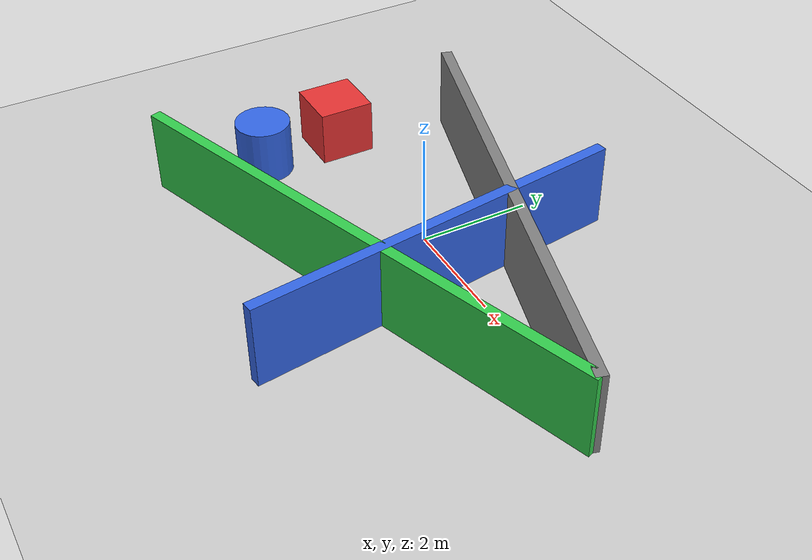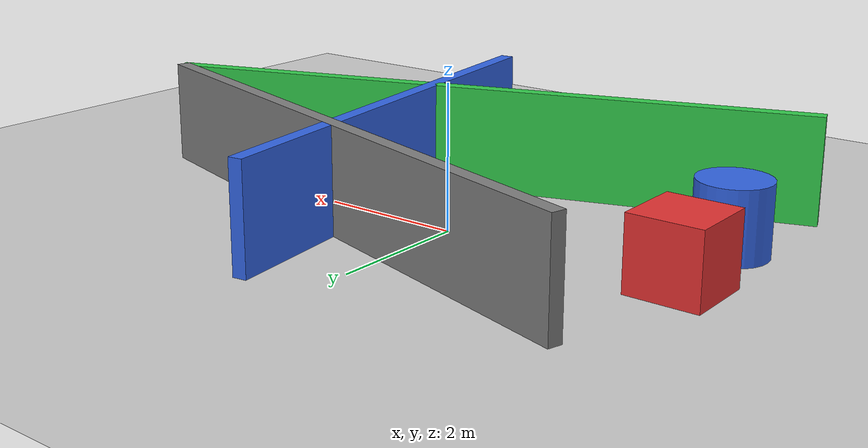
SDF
<?xml version='1.0' encoding='utf-8'?>
<sdf version="1.8">
  <world name="sdfsd">
    <physics name="1ms" type="ode">
      <max_step_size>0.001</max_step_size>
      <real_time_factor>1</real_time_factor>
      <real_time_update_rate>1000</real_time_update_rate>
    </physics>
    <plugin name="ignition::gazebo::systems::Physics" filename="ignition-gazebo-physics-system" />
    <plugin name="ignition::gazebo::systems::UserCommands" filename="ignition-gazebo-user-commands-system" />
    <plugin name="ignition::gazebo::systems::SceneBroadcaster" filename="ignition-gazebo-scene-broadcaster-system" />
    <plugin name="ignition::gazebo::systems::Contact" filename="ignition-gazebo-contact-system" />
    <plugin name="ignition::gazebo::systems::Sensors" filename="ignition-gazebo-sensors-system">
      <render_engine>ogre2</render_engine>
    </plugin>
    <gravity>0 0 -9.8</gravity>
    <magnetic_field>6e-06 2.3e-05 -4.2e-05</magnetic_field>
    <atmosphere type="adiabatic" />
    <scene>
      <ambient>0.4 0.4 0.4 1</ambient>
      <background>0.7 0.7 0.7 1</background>
      <shadows>true</shadows>
    </scene>
    <model name="ground_plane">
      <static>true</static>
      <link name="link">
        <collision name="collision">
          <geometry>
            <plane>
              <normal>0 0 1</normal>
              <size>100 100</size>
            </plane>
          </geometry>
          <surface>
            <friction>
              <ode />
            </friction>
            <bounce />
            <contact />
          </surface>
        </collision>
        <visual name="visual">
          <geometry>
            <plane>
              <normal>0 0 1</normal>
              <size>100 100</size>
            </plane>
          </geometry>
          <material>
            <ambient>0.8 0.8 0.8 1</ambient>
            <diffuse>0.8 0.8 0.8 1</diffuse>
            <specular>0.8 0.8 0.8 1</specular>
          </material>
        </visual>
        <pose>0 0 0 0 0 0</pose>
        <inertial>
          <pose>0 0 0 0 0 0</pose>
          <mass>1</mass>
          <inertia>
            <ixx>1</ixx>
            <ixy>0</ixy>
            <ixz>0</ixz>
            <iyy>1</iyy>
            <iyz>0</iyz>
            <izz>1</izz>
          </inertia>
        </inertial>
        <enable_wind>false</enable_wind>
      </link>
      <pose>0 0 0 0 0 0</pose>
      <self_collide>false</self_collide>
    </model>
    <light name="sun" type="directional">
      <pose>0 0 10 0 0 0</pose>
      <cast_shadows>true</cast_shadows>
      <intensity>1</intensity>
      <direction>-0.5 0.1 -0.9</direction>
      <diffuse>0.8 0.8 0.8 1</diffuse>
      <specular>0.2 0.2 0.2 1</specular>
      <attenuation>
        <range>1000</range>
        <linear>0.01</linear>
        <constant>0.9</constant>
        <quadratic>0.001</quadratic>
      </attenuation>
      <spot>
        <inner_angle>0</inner_angle>
        <outer_angle>0</outer_angle>
        <falloff>0</falloff>
      </spot>
    </light>
  <model name="wall_1"><static>true</static><pose>1.150 0.950 0.750 0 0 -0.286</pose><link name="link"><collision name="collision"><geometry><box><size>8.860 0.200 1.500</size></box></geometry></collision><visual name="visual"><geometry><box><size>8.860 0.200 1.500</size></box></geometry><material><ambient>0.5 0.5 0.5 1</ambient><diffuse>0.5 0.5 0.5 1</diffuse></material></visual></link></model><model name="wall_2"><static>true</static><pose>0.850 -1.800 0.750 0 0 -2.823</pose><link name="link"><collision name="collision"><geometry><box><size>9.582 0.200 1.500</size></box></geometry></collision><visual name="visual"><geometry><box><size>9.582 0.200 1.500</size></box></geometry><material><ambient>0.2 0.8 0.3 1</ambient><diffuse>0.2 0.8 0.3 1</diffuse></material></visual></link></model><model name="wall_3"><static>true</static><pose>1.350 -0.500 0.750 0 0 -1.439</pose><link name="link"><collision name="collision"><geometry><box><size>6.859 0.200 1.500</size></box></geometry></collision><visual name="visual"><geometry><box><size>6.859 0.200 1.500</size></box></geometry><material><ambient>0.2 0.4 0.9 1</ambient><diffuse>0.2 0.4 0.9 1</diffuse></material></visual></link></model><model name="box_4"><static>true</static><pose>-3.400 -0.000 0.500 0 0 0</pose><link name="link"><collision name="collision"><geometry><box><size>1.000 1.000 1.000</size></box></geometry></collision><visual name="visual"><geometry><box><size>1.000 1.000 1.000</size></box></geometry><material><ambient>0.9 0.2 0.2 1</ambient><diffuse>0.9 0.2 0.2 1</diffuse></material></visual></link></model><model name="cylinder_5"><static>true</static><pose>-3.300 -1.500 0.500 0 0 0</pose><link name="link"><collision name="collision"><geometry><cylinder><radius>0.500</radius><length>1.000</length></cylinder></geometry></collision><visual name="visual"><geometry><cylinder><radius>0.500</radius><length>1.000</length></cylinder></geometry><material><ambient>0.2 0.4 0.9 1</ambient><diffuse>0.2 0.4 0.9 1</diffuse></material></visual></link></model></world>
</sdf>
